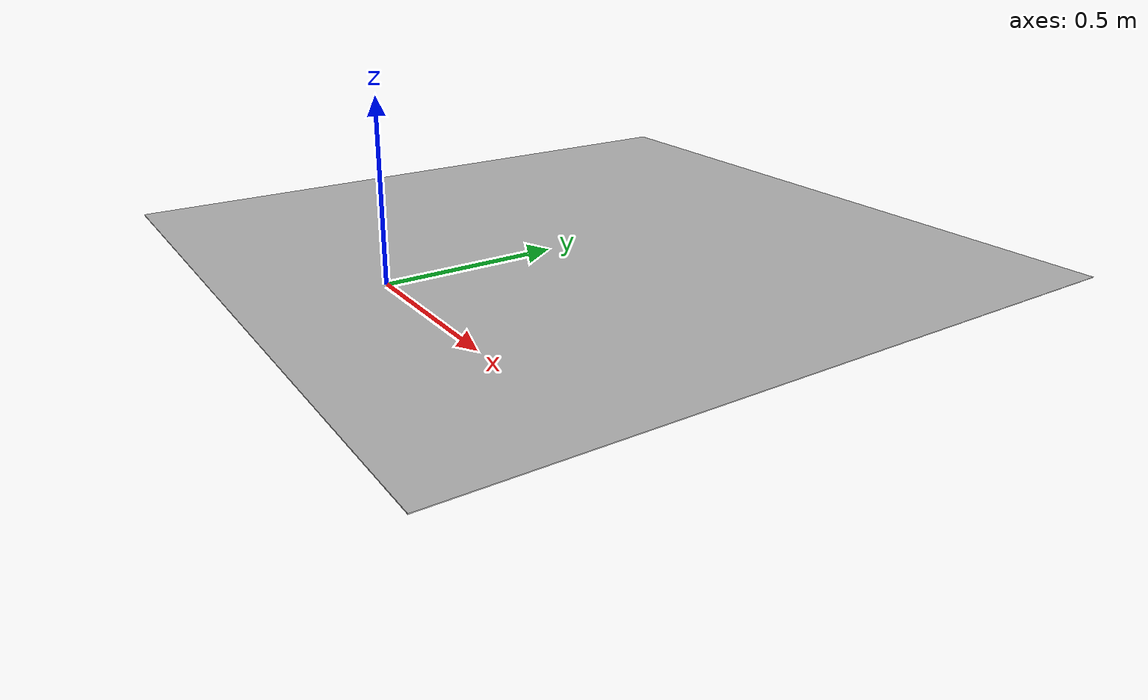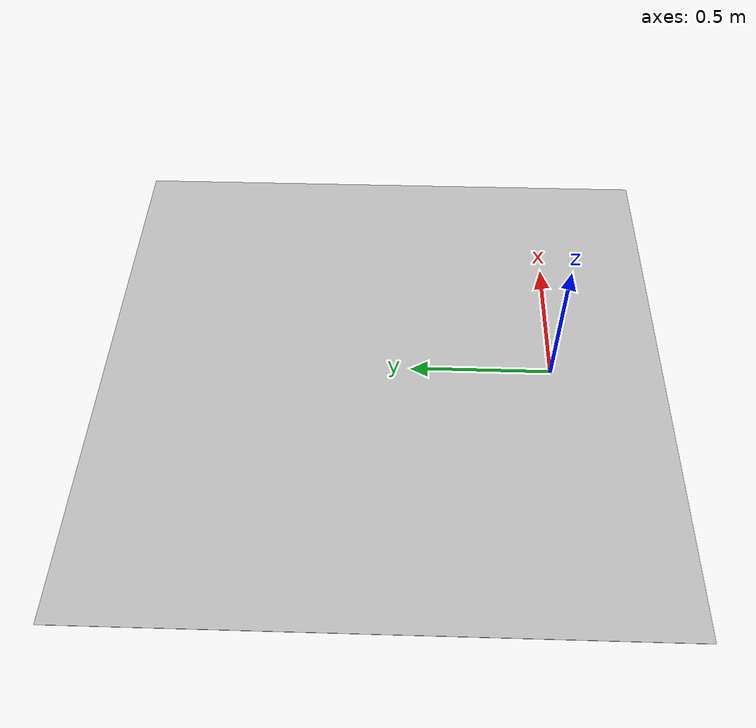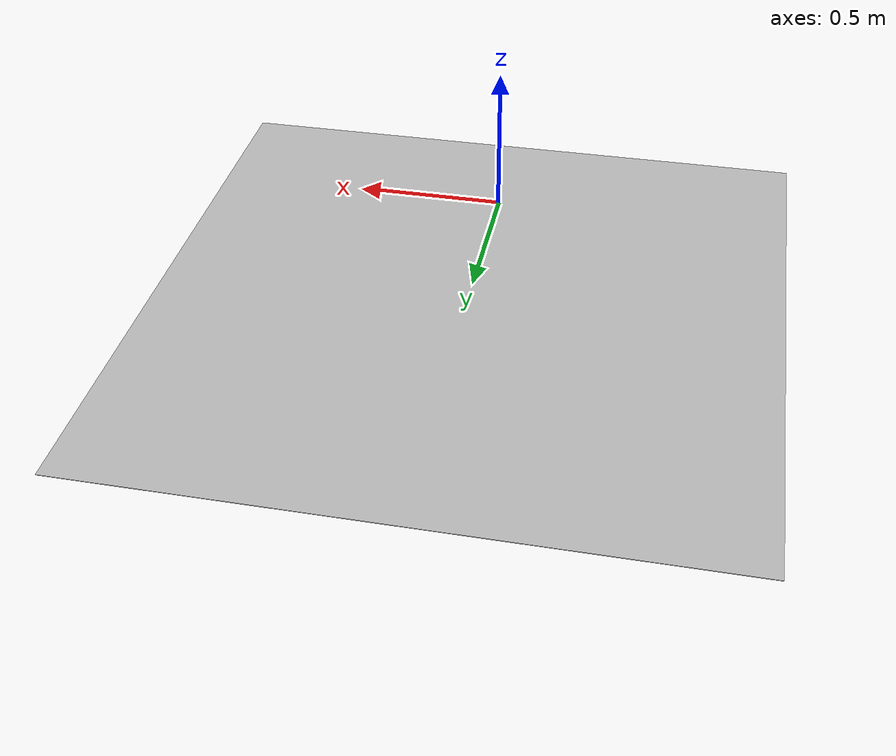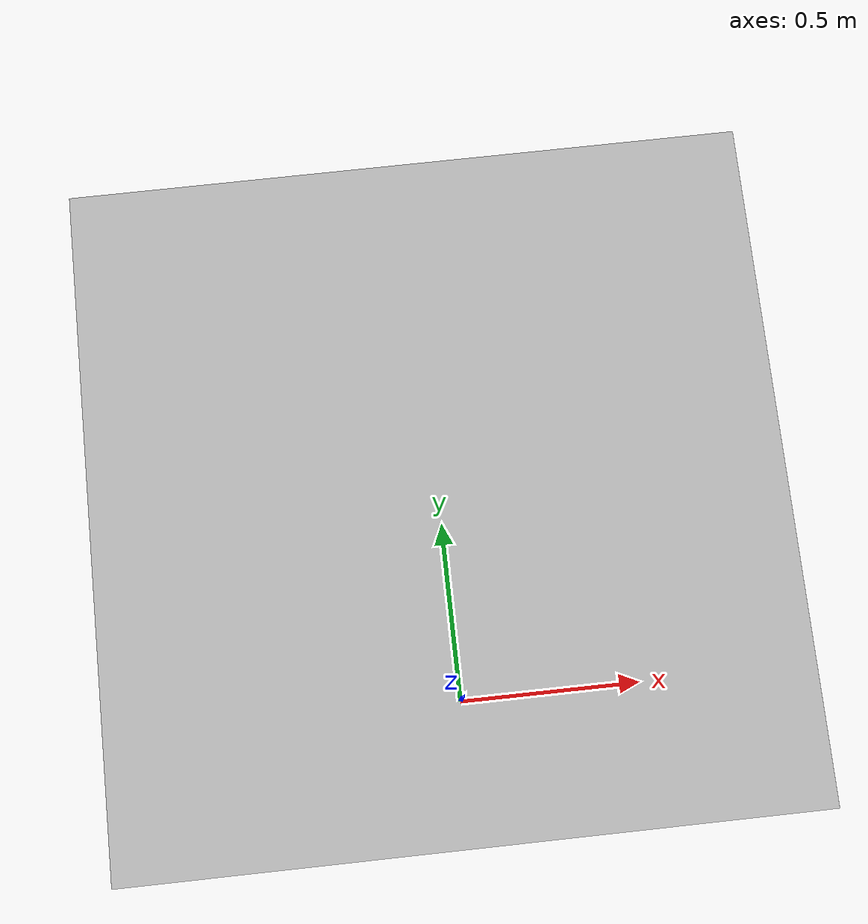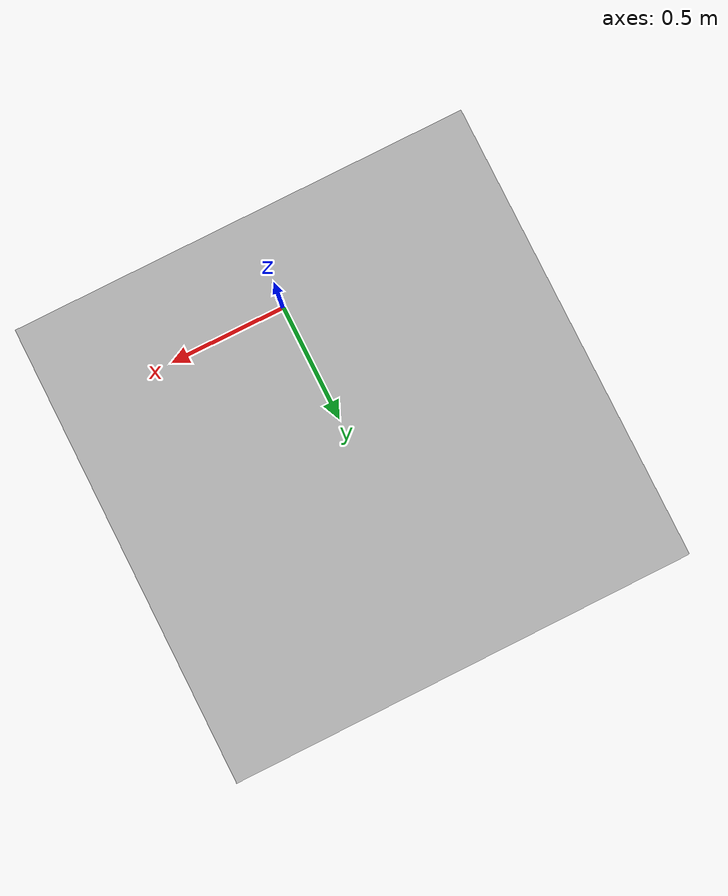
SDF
<?xml version="1.0"?>
<sdf version="1.4">
<world name="ground_picture">
  <include>
    <uri>model://sun</uri>
  </include>

  <include>
    <pose>0 0.6 0 0 0 0</pose>
    <uri>model://picture_ground</uri>
  </include>

</world>
</sdf>

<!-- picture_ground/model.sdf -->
<sdf version="1.5">
  <model name="picture_ground">
    <static>true</static>
      <link name="link">
        <visual name="visual">
          <cast_shadows>false</cast_shadows>
          <geometry>
            <plane>
              <normal>0 0 1</normal>
              <size>2 2</size>
            </plane>
          </geometry>
          <material>
            <script>
              <uri>model://picture_ground/materials/scripts</uri>
              <uri>model://picture_ground/materials/textures</uri>
              <name>SimpleImage</name>
            </script>
          </material>
        </visual>
      </link>
    </model>
</sdf>
